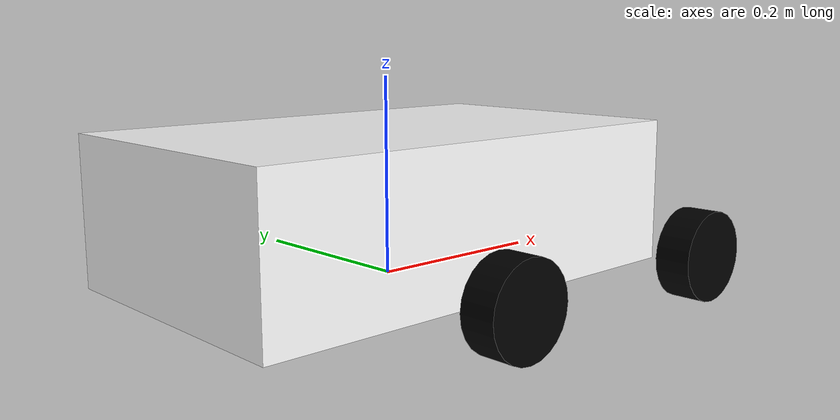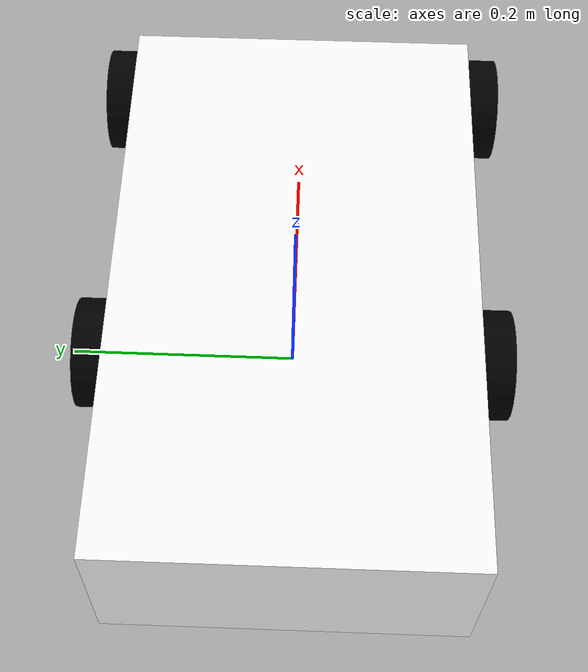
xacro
<?xml version="1.0"?>
<robot xmlns:xacro="http://www.ros.org/wiki/xacro"  name="my_bot">

    <xacro:include filename="inertia_macros.xacro" />
    <xacro:include filename="camera.xacro" />
    <xacro:include filename="gazebo_control.xacro" />

    <material name="white">
        <color rgba="1 1 1 1" />
    </material>
    <material name="black">
        <color rgba="0 0 0 1" />
    </material>

    <link name="base_link">
    </link>

    <joint name="chassis_joint" type="fixed">
        <parent link="base_link"/>
        <child link="chassis"/>
        <origin xyz="-0.1 0 0"/>
    </joint>

    <link name="chassis">
        <visual>
            <origin xyz="0.1 0 0.075"/>
            <geometry>
                <box size="0.5 0.3 0.15"/>
            </geometry>
            <material name="white"/>
        </visual>
        <collision>
            <origin xyz="0.1 0 0.075"/>
            <geometry>
                <box size="0.5 0.3 0.15"/>
            </geometry>
        </collision>
        <xacro:inertial_box mass="2.0" x="0.5" y="0.3" z="0.15">
            <origin xyz="0.1 0 0.075" rpy="0 0 0"/>
        </xacro:inertial_box>
    </link>

    <!-- 修正：轮子宏定义 - 修改轴方向为绕Y轴旋转 -->
    <xacro:macro name="wheel" params="name x y z">
        <link name="${name}_wheel">
            <visual>
                <geometry>
                    <cylinder radius="0.05" length="0.04"/>
                </geometry>
                <material name="black"/>
            </visual>
            <collision>
                <geometry>
                    <cylinder radius="0.05" length="0.04"/>
                </geometry>
            </collision>
            <xacro:inertial_cylinder mass="0.1" length="0.04" radius="0.05">
                <origin xyz="0 0 0" rpy="0 0 0"/>
            </xacro:inertial_cylinder>
        </link>

        <!-- 修正：将轴从 0 0 1 改为 0 1 0（绕Y轴旋转） -->
        <joint name="${name}_wheel_joint" type="continuous">
            <parent link="base_link"/>
            <child link="${name}_wheel"/>
            <origin xyz="${x} ${y} ${z}" rpy="-${pi/2} 0 0" />
            <axis xyz="0 0 1"/>  <!-- 修改这里：从 0 0 1 改为 0 1 0 -->
        </joint>
    </xacro:macro>

    <xacro:wheel name="rear_left"  x="0.0"  y="0.175" z="0.0" />
    <xacro:wheel name="rear_right" x="0.0"  y="-0.175" z="0.0" />
    <xacro:wheel name="front_left" x="0.3"  y="0.175" z="0.0" />
    <xacro:wheel name="front_right" x="0.3" y="-0.175" z="0.0" />

    <gazebo reference="front_left_wheel">
        <mu1>0.01</mu1>
        <mu2>0.01</mu2>
    </gazebo>
    <gazebo reference="front_right_wheel">
        <mu1>0.01</mu1>
        <mu2>0.01</mu2>
    </gazebo>

    <xacro:camera_sensor />

</robot>

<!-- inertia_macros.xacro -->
<robot xmlns:xacro="http://www.ros.org/wiki/xacro">

    <xacro:macro name="inertial_box" params="mass x y z *origin">
        <inertial>
            <xacro:insert_block name="origin"/>
            <mass value="${mass}" />
            <inertia ixx="${(1/12) * mass * (y*y + z*z)}" ixy="0.0" ixz="0.0"
                     iyy="${(1/12) * mass * (x*x + z*z)}" iyz="0.0"
                     izz="${(1/12) * mass * (x*x + y*y)}" />
        </inertial>
    </xacro:macro>

    <xacro:macro name="inertial_cylinder" params="mass length radius *origin">
        <inertial>
            <xacro:insert_block name="origin"/>
            <mass value="${mass}" />
            <inertia ixx="${(1/12) * mass * (3*radius*radius + length*length)}" ixy="0.0" ixz="0.0"
                     iyy="${(1/12) * mass * (3*radius*radius + length*length)}" iyz="0.0"
                     izz="${(1/2) * mass * (radius*radius)}" />
        </inertial>
    </xacro:macro>

</robot>

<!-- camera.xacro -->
<robot xmlns:xacro="http://www.ros.org/wiki/xacro">

    <xacro:macro name="camera_sensor">

        <joint name="camera_joint" type="fixed">
            <parent link="chassis"/>
            <child link="camera_link"/>
            <origin xyz="0.25 0 0.1" rpy="0 0 0"/>
        </joint>

        <link name="camera_link">
            <visual>
                <geometry>
                    <box size="0.05 0.05 0.05"/>
                </geometry>
                <material name="red">
                    <color rgba="1 0 0 1"/>
                </material>
            </visual>
            <collision>
                <geometry>
                    <box size="0.05 0.05 0.05"/>
                </geometry>
            </collision>
            <xacro:inertial_box mass="0.1" x="0.05" y="0.05" z="0.05">
                <origin xyz="0 0 0" rpy="0 0 0"/>
            </xacro:inertial_box>
        </link>

        <gazebo reference="camera_link">
            <sensor name="camera" type="camera">
                <always_on>1</always_on>
                <update_rate>30</update_rate>
                <visualize>true</visualize> <topic>camera/image_raw</topic> <camera>
                    <horizontal_fov>1.047</horizontal_fov> <image>
                        <width>640</width>
                        <height>480</height>
                        <format>R8G8B8</format>
                    </image>
                    <clip>
                        <near>0.1</near>
                        <far>100</far>
                    </clip>
                </camera>
            </sensor>
        </gazebo>

    </xacro:macro>
</robot>
